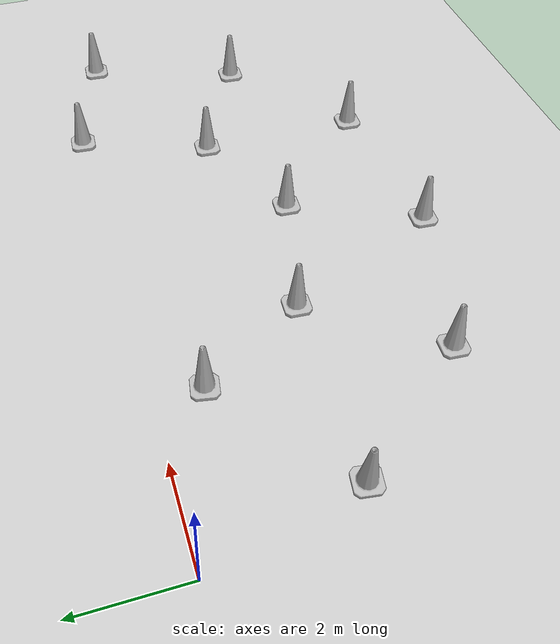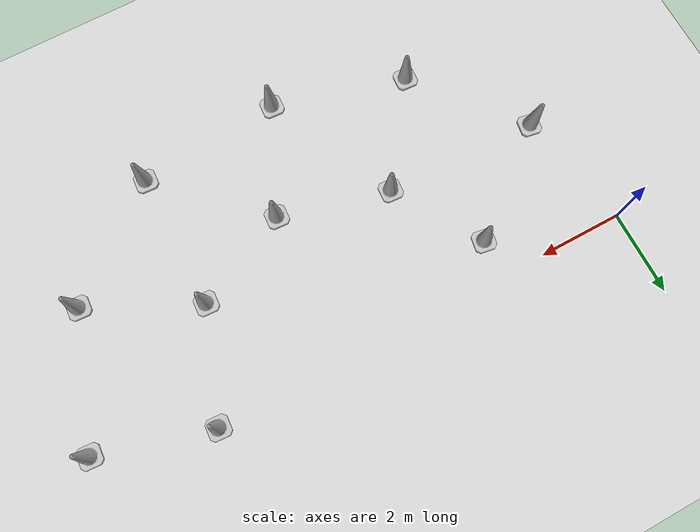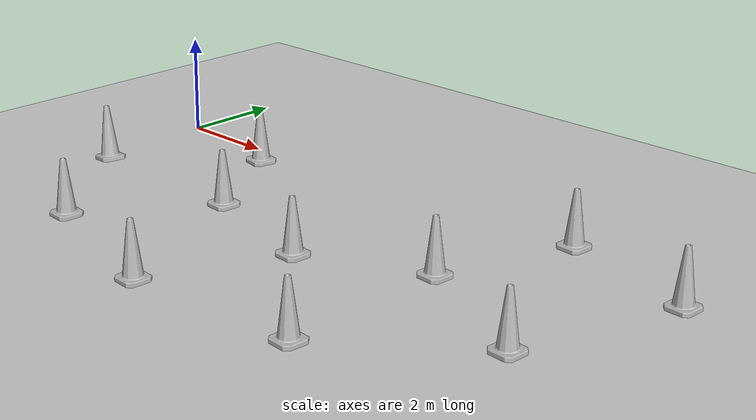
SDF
<sdf version="1.7">
 <world name="default">
  <model name="ground_plane">
   <static>1</static>
   <link name="link">
    <collision name="collision">
     <geometry><plane><normal>0 0 1</normal><size>100 100</size></plane></geometry>
     <surface><friction><ode><mu>100</mu><mu2>50</mu2></ode></friction></surface>
    </collision>
    <visual name="visual">
     <cast_shadows>0</cast_shadows>
     <geometry><plane><normal>0 0 1</normal><size>100 100</size></plane></geometry>
     <material>
      <script><uri>file://media/materials/scripts/gazebo.material</uri><name>Gazebo/Grey</name></script>
     </material>
    </visual>
    <velocity_decay><linear>0</linear><angular>0</angular></velocity_decay>
   </link>
  </model>
  <model name="Construction Cone_0_clone_0_clone_clone_5_clone_5">
   <link name="link">
    <collision name="collision">
     <geometry>
      <mesh><scale>10 10 10</scale><uri>model://construction_cone/meshes/construction_cone.dae</uri></mesh>
     </geometry>
    </collision>
    <visual name="visual">
     <geometry>
      <mesh><scale>10 10 10</scale><uri>model://construction_cone/meshes/construction_cone.dae</uri></mesh>
     </geometry>
    </visual>
    <velocity_decay><linear>0</linear><angular>0</angular></velocity_decay>
    <inertial>
     <inertia><ixx>1</ixx><ixy>0</ixy><ixz>0</ixz><iyy>1</iyy><iyz>0</iyz><izz>1</izz></inertia>
     <mass>1</mass>
    </inertial>
   </link>
   <pose>10.1313 0.010307 0.225525 7.7e-05 -9.7e-05 -0.059693</pose>
   <static>0</static>
  </model>
  <model name="Construction Cone_0_clone_0_clone_clone_5_clone_6">
   <link name="link">
    <collision name="collision">
     <geometry>
      <mesh><scale>10 10 10</scale><uri>model://construction_cone/meshes/construction_cone.dae</uri></mesh>
     </geometry>
    </collision>
    <visual name="visual">
     <geometry>
      <mesh><scale>10 10 10</scale><uri>model://construction_cone/meshes/construction_cone.dae</uri></mesh>
     </geometry>
    </visual>
    <velocity_decay><linear>0</linear><angular>0</angular></velocity_decay>
    <inertial>
     <inertia><ixx>1</ixx><ixy>0</ixy><ixz>0</ixz><iyy>1</iyy><iyz>0</iyz><izz>1</izz></inertia>
     <mass>1</mass>
    </inertial>
   </link>
   <pose>9.22076 -2.55617 0.224663 1.4e-05 -2.8e-05 -0.059954</pose>
   <static>0</static>
  </model>
  <model name="Construction Cone_0_clone_0_clone_clone_5_clone_7">
   <link name="link">
    <collision name="collision">
     <geometry>
      <mesh><scale>10 10 10</scale><uri>model://construction_cone/meshes/construction_cone.dae</uri></mesh>
     </geometry>
    </collision>
    <visual name="visual">
     <geometry>
      <mesh><scale>10 10 10</scale><uri>model://construction_cone/meshes/construction_cone.dae</uri></mesh>
     </geometry>
    </visual>
    <velocity_decay><linear>0</linear><angular>0</angular></velocity_decay>
    <inertial>
     <inertia><ixx>1</ixx><ixy>0</ixy><ixz>0</ixz><iyy>1</iyy><iyz>0</iyz><izz>1</izz></inertia>
     <mass>1</mass>
    </inertial>
   </link>
   <pose>6.94892 -3.61681 0.22554 8e-06 -1.6e-05 -0.059756</pose>
   <static>0</static>
  </model>
  <model name="Construction Cone_0_clone_0_clone_clone_5_clone_8">
   <link name="link">
    <collision name="collision">
     <geometry>
      <mesh><scale>10 10 10</scale><uri>model://construction_cone/meshes/construction_cone.dae</uri></mesh>
     </geometry>
    </collision>
    <visual name="visual">
     <geometry>
      <mesh><scale>10 10 10</scale><uri>model://construction_cone/meshes/construction_cone.dae</uri></mesh>
     </geometry>
    </visual>
    <velocity_decay><linear>0</linear><angular>0</angular></velocity_decay>
    <inertial>
     <inertia><ixx>1</ixx><ixy>0</ixy><ixz>0</ixz><iyy>1</iyy><iyz>0</iyz><izz>1</izz></inertia>
     <mass>1</mass>
    </inertial>
   </link>
   <pose>4.35376 -2.94992 0.224583 0.000135 6.6e-05 -0.060052</pose>
   <static>0</static>
  </model>
  <model name="Construction Cone_0_clone_0_clone_clone_5_clone_12">
   <link name="link">
    <collision name="collision">
     <geometry>
      <mesh><scale>10 10 10</scale><uri>model://construction_cone/meshes/construction_cone.dae</uri></mesh>
     </geometry>
    </collision>
    <visual name="visual">
     <geometry>
      <mesh><scale>10 10 10</scale><uri>model://construction_cone/meshes/construction_cone.dae</uri></mesh>
     </geometry>
    </visual>
    <velocity_decay><linear>0</linear><angular>0</angular></velocity_decay>
    <inertial>
     <inertia><ixx>1</ixx><ixy>0</ixy><ixz>0</ixz><iyy>1</iyy><iyz>0</iyz><izz>1</izz></inertia>
     <mass>1</mass>
    </inertial>
   </link>
   <pose>3.07317 -0.889891 0.225516 5.4e-05 -0.000141 -0.168625</pose>
   <static>0</static>
  </model>
  <model name="Construction Cone_0_clone_0_clone_clone_5_clone_21">
   <link name="link">
    <collision name="collision">
     <geometry>
      <mesh><scale>10 10 10</scale><uri>model://construction_cone/meshes/construction_cone.dae</uri></mesh>
     </geometry>
    </collision>
    <visual name="visual">
     <geometry>
      <mesh><scale>10 10 10</scale><uri>model://construction_cone/meshes/construction_cone.dae</uri></mesh>
     </geometry>
    </visual>
    <velocity_decay><linear>0</linear><angular>0</angular></velocity_decay>
    <inertial>
     <inertia><ixx>1</ixx><ixy>0</ixy><ixz>0</ixz><iyy>1</iyy><iyz>0</iyz><izz>1</izz></inertia>
     <mass>1</mass>
    </inertial>
   </link>
   <pose>12.775 -0.734503 0.225539 7e-06 -9e-06 -0.059867</pose>
   <static>0</static>
  </model>
  <model name="Construction Cone_0_clone_0_clone_clone_5_clone_22">
   <link name="link">
    <collision name="collision">
     <geometry>
      <mesh><scale>10 10 10</scale><uri>model://construction_cone/meshes/construction_cone.dae</uri></mesh>
     </geometry>
    </collision>
    <visual name="visual">
     <geometry>
      <mesh><scale>10 10 10</scale><uri>model://construction_cone/meshes/construction_cone.dae</uri></mesh>
     </geometry>
    </visual>
    <velocity_decay><linear>0</linear><angular>0</angular></velocity_decay>
    <inertial>
     <inertia><ixx>1</ixx><ixy>0</ixy><ixz>0</ixz><iyy>1</iyy><iyz>0</iyz><izz>1</izz></inertia>
     <mass>1</mass>
    </inertial>
   </link>
   <pose>11.7518 -3.79579 0.225561 0.000114 -7.2e-05 -0.060018</pose>
   <static>0</static>
  </model>
  <model name="Construction Cone_0_clone_0_clone_clone_5_clone_23">
   <link name="link">
    <collision name="collision">
     <geometry>
      <mesh><scale>10 10 10</scale><uri>model://construction_cone/meshes/construction_cone.dae</uri></mesh>
     </geometry>
    </collision>
    <visual name="visual">
     <geometry>
      <mesh><scale>10 10 10</scale><uri>model://construction_cone/meshes/construction_cone.dae</uri></mesh>
     </geometry>
    </visual>
    <velocity_decay><linear>0</linear><angular>0</angular></velocity_decay>
    <inertial>
     <inertia><ixx>1</ixx><ixy>0</ixy><ixz>0</ixz><iyy>1</iyy><iyz>0</iyz><izz>1</izz></inertia>
     <mass>1</mass>
    </inertial>
   </link>
   <pose>9.22909 -5.82065 0.22554 8e-06 -1.6e-05 -0.059924</pose>
   <static>0</static>
  </model>
  <model name="Construction Cone_0_clone_0_clone_clone_5_clone_24">
   <link name="link">
    <collision name="collision">
     <geometry>
      <mesh><scale>10 10 10</scale><uri>model://construction_cone/meshes/construction_cone.dae</uri></mesh>
     </geometry>
    </collision>
    <visual name="visual">
     <geometry>
      <mesh><scale>10 10 10</scale><uri>model://construction_cone/meshes/construction_cone.dae</uri></mesh>
     </geometry>
    </visual>
    <velocity_decay><linear>0</linear><angular>0</angular></velocity_decay>
    <inertial>
     <inertia><ixx>1</ixx><ixy>0</ixy><ixz>0</ixz><iyy>1</iyy><iyz>0</iyz><izz>1</izz></inertia>
     <mass>1</mass>
    </inertial>
   </link>
   <pose>5.83074 -6.1284 0.225515 -6.3e-05 0.000106 -0.059459</pose>
   <static>0</static>
  </model>
  <model name="Construction Cone_0_clone_0_clone_clone_5_clone_25">
   <link name="link">
    <collision name="collision">
     <geometry>
      <mesh><scale>10 10 10</scale><uri>model://construction_cone/meshes/construction_cone.dae</uri></mesh>
     </geometry>
    </collision>
    <visual name="visual">
     <geometry>
      <mesh><scale>10 10 10</scale><uri>model://construction_cone/meshes/construction_cone.dae</uri></mesh>
     </geometry>
    </visual>
    <velocity_decay><linear>0</linear><angular>0</angular></velocity_decay>
    <inertial>
     <inertia><ixx>1</ixx><ixy>0</ixy><ixz>0</ixz><iyy>1</iyy><iyz>0</iyz><izz>1</izz></inertia>
     <mass>1</mass>
    </inertial>
   </link>
   <pose>2.69023 -5.27033 0.224584 -2.9e-05 0.000123 -0.060029</pose>
   <static>0</static>
  </model>
  <model name="Construction Cone_0_clone_0_clone_clone_5_clone_26">
   <link name="link">
    <collision name="collision">
     <geometry>
      <mesh><scale>10 10 10</scale><uri>model://construction_cone/meshes/construction_cone.dae</uri></mesh>
     </geometry>
    </collision>
    <visual name="visual">
     <geometry>
      <mesh><scale>10 10 10</scale><uri>model://construction_cone/meshes/construction_cone.dae</uri></mesh>
     </geometry>
    </visual>
    <velocity_decay><linear>0</linear><angular>0</angular></velocity_decay>
    <inertial>
     <inertia><ixx>1</ixx><ixy>0</ixy><ixz>0</ixz><iyy>1</iyy><iyz>0</iyz><izz>1</izz></inertia>
     <mass>1</mass>
    </inertial>
   </link>
   <pose>0.686736 -2.84406 0.190889 -0.020322 -0.093199 -0.13694</pose>
   <static>0</static>
  </model>
 </world>
</sdf>
